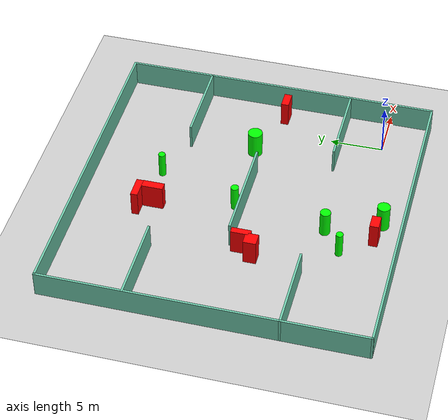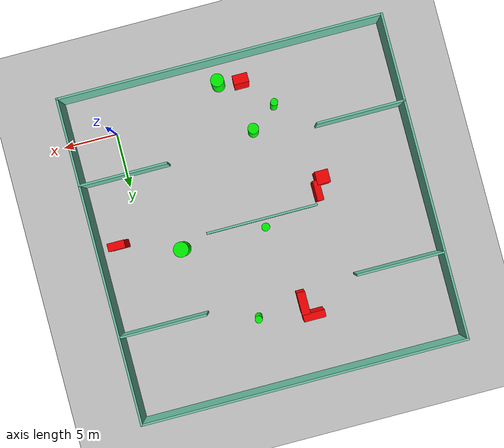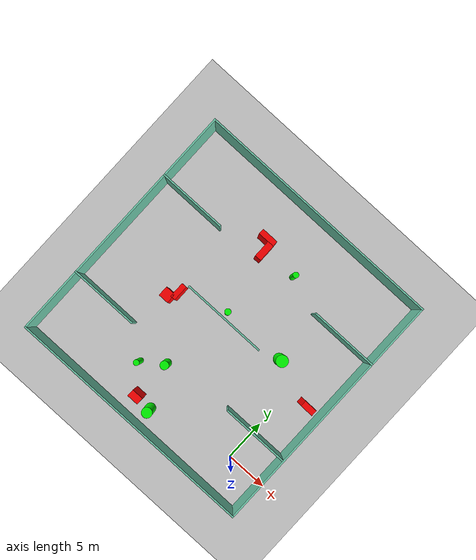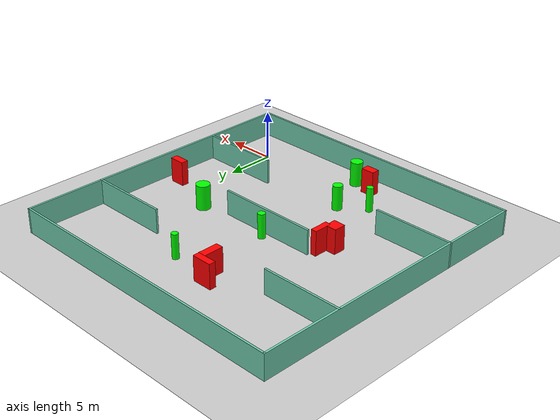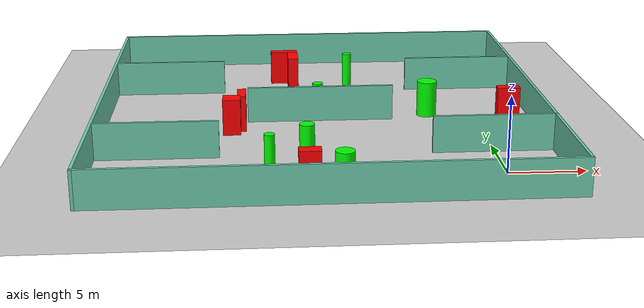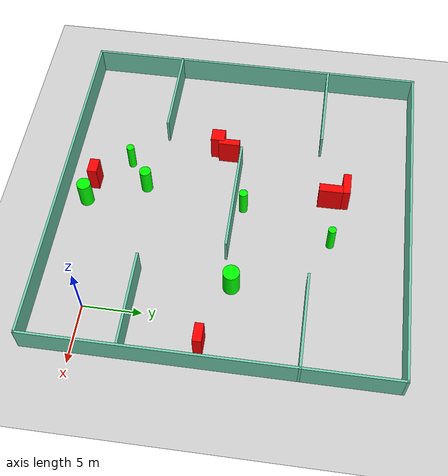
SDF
<sdf version="1.7">
 <world name="default">
  <light name="sun" type="directional">
   <pose>0 0 10 0 -0 0</pose>
   <diffuse>0.8 0.8 0.8 1</diffuse>
   <specular>0.2 0.2 0.2 1</specular>
   <attenuation>
    <range>1000</range>
    <constant>0.9</constant>
    <linear>0.01</linear>
    <quadratic>0.001</quadratic>
   </attenuation>
   <direction>-0.5 0.1 -0.9</direction>
   <spot><inner_angle>0</inner_angle><outer_angle>0</outer_angle><falloff>0</falloff></spot>
  </light>
  <model name="ground_plane">
   <static>1</static>
   <link name="link">
    <collision name="collision">
     <geometry><plane><normal>0 0 1</normal><size>100 100</size></plane></geometry>
     <surface>
      <contact><collide_bitmask>65535</collide_bitmask></contact>
      <friction><ode><mu>100</mu><mu2>50</mu2></ode></friction>
     </surface>
    </collision>
    <visual name="visual">
     <cast_shadows>0</cast_shadows>
     <geometry><plane><normal>0 0 1</normal><size>100 100</size></plane></geometry>
     <material>
      <script><uri>file://media/materials/scripts/gazebo.material</uri><name>Gazebo/Grey</name></script>
     </material>
    </visual>
   </link>
  </model>
  <gravity>0 0 -9.8</gravity>
  <magnetic_field>6e-06 2.3e-05 -4.2e-05</magnetic_field>
  <atmosphere type="adiabatic"/>
  <physics type="ode">
   <max_step_size>0.001</max_step_size>
   <real_time_factor>1</real_time_factor>
   <real_time_update_rate>1000</real_time_update_rate>
  </physics>
  <scene><ambient>0.4 0.4 0.4 1</ambient><background>0.7 0.7 0.7 1</background><shadows>1</shadows></scene>
  <spherical_coordinates>
   <surface_model>EARTH_WGS84</surface_model>
   <latitude_deg>0</latitude_deg>
   <longitude_deg>0</longitude_deg>
   <elevation>0</elevation>
   <heading_deg>0</heading_deg>
  </spherical_coordinates>
  <model name="my_base_walls">
   <link name="Wall_10">
    <collision name="Wall_10_Collision">
     <geometry><box><size>8.2 0.2 2.5</size></box></geometry>
     <pose>0 0 1.25 0 -0 0</pose>
    </collision>
    <visual name="Wall_10_Visual">
     <pose>0 0 1.25 0 -0 0</pose>
     <geometry><box><size>8.2 0.2 2.5</size></box></geometry>
     <material>
      <script><uri>file://media/materials/scripts/gazebo.material</uri><name>Gazebo/Grey</name></script>
      <ambient>0.435294 0.796078 0.67451 1</ambient>
     </material>
     <meta><layer>0</layer></meta>
    </visual>
    <pose>-11 -7 0 0 -0 0</pose>
   </link>
   <link name="Wall_12">
    <collision name="Wall_12_Collision">
     <geometry><box><size>8.2 0.2 2.5</size></box></geometry>
     <pose>0 0 1.25 0 -0 0</pose>
    </collision>
    <visual name="Wall_12_Visual">
     <pose>0 0 1.25 0 -0 0</pose>
     <geometry><box><size>8.2 0.2 2.5</size></box></geometry>
     <material>
      <script><uri>file://media/materials/scripts/gazebo.material</uri><name>Gazebo/Grey</name></script>
      <ambient>0.435294 0.796078 0.67451 1</ambient>
     </material>
     <meta><layer>0</layer></meta>
    </visual>
    <pose>-11 7 0 0 -0 0</pose>
   </link>
   <link name="Wall_14">
    <collision name="Wall_14_Collision">
     <geometry><box><size>8.2 0.2 2.5</size></box></geometry>
     <pose>0 0 1.25 0 -0 0</pose>
    </collision>
    <visual name="Wall_14_Visual">
     <pose>0 0 1.25 0 -0 0</pose>
     <geometry><box><size>8.2 0.2 2.5</size></box></geometry>
     <material>
      <script><uri>file://media/materials/scripts/gazebo.material</uri><name>Gazebo/Grey</name></script>
      <ambient>0.435294 0.796078 0.67451 1</ambient>
     </material>
     <meta><layer>0</layer></meta>
    </visual>
    <pose>11 7 0 0 -0 3.14159</pose>
   </link>
   <link name="Wall_16">
    <collision name="Wall_16_Collision">
     <geometry><box><size>10.2 0.2 2.5</size></box></geometry>
     <pose>0 0 1.25 0 -0 0</pose>
    </collision>
    <visual name="Wall_16_Visual">
     <pose>0 0 1.25 0 -0 0</pose>
     <geometry><box><size>10.2 0.2 2.5</size></box></geometry>
     <material>
      <script><uri>file://media/materials/scripts/gazebo.material</uri><name>Gazebo/Grey</name></script>
      <ambient>0.435294 0.796078 0.67451 1</ambient>
     </material>
     <meta><layer>0</layer></meta>
    </visual>
    <pose>0 0 0 0 -0 3.14159</pose>
   </link>
   <link name="Wall_2">
    <collision name="Wall_2_Collision">
     <geometry><box><size>30.2 0.2 2.5</size></box></geometry>
     <pose>0 0 1.25 0 -0 0</pose>
    </collision>
    <visual name="Wall_2_Visual">
     <pose>0 0 1.25 0 -0 0</pose>
     <geometry><box><size>30.2 0.2 2.5</size></box></geometry>
     <material>
      <script><uri>file://media/materials/scripts/gazebo.material</uri><name>Gazebo/Grey</name></script>
      <ambient>0.435294 0.796078 0.67451 1</ambient>
     </material>
     <meta><layer>0</layer></meta>
    </visual>
    <pose>0 -15 0 0 -0 3.14159</pose>
   </link>
   <link name="Wall_3">
    <collision name="Wall_3_Collision">
     <geometry><box><size>30.2 0.2 2.5</size></box></geometry>
     <pose>0 0 1.25 0 -0 0</pose>
    </collision>
    <visual name="Wall_3_Visual">
     <pose>0 0 1.25 0 -0 0</pose>
     <geometry><box><size>30.2 0.2 2.5</size></box></geometry>
     <material>
      <script><uri>file://media/materials/scripts/gazebo.material</uri><name>Gazebo/Grey</name></script>
      <ambient>0.435294 0.796078 0.67451 1</ambient>
     </material>
     <meta><layer>0</layer></meta>
    </visual>
    <pose>-15 0 0 0 -0 1.5708</pose>
   </link>
   <link name="Wall_4">
    <collision name="Wall_4_Collision">
     <geometry><box><size>30.2 0.2 2.5</size></box></geometry>
     <pose>0 0 1.25 0 -0 0</pose>
    </collision>
    <visual name="Wall_4_Visual">
     <pose>0 0 1.25 0 -0 0</pose>
     <geometry><box><size>30.2 0.2 2.5</size></box></geometry>
     <material>
      <script><uri>file://media/materials/scripts/gazebo.material</uri><name>Gazebo/Grey</name></script>
      <ambient>0.435294 0.796078 0.67451 1</ambient>
     </material>
     <meta><layer>0</layer></meta>
    </visual>
    <pose>0 15 0 0 -0 0</pose>
   </link>
   <link name="Wall_6">
    <collision name="Wall_6_Collision">
     <geometry><box><size>30.2 0.2 2.5</size></box></geometry>
     <pose>0 0 1.25 0 -0 0</pose>
    </collision>
    <visual name="Wall_6_Visual">
     <pose>0 0 1.25 0 -0 0</pose>
     <geometry><box><size>30.2 0.2 2.5</size></box></geometry>
     <material>
      <script><uri>file://media/materials/scripts/gazebo.material</uri><name>Gazebo/Grey</name></script>
      <ambient>0.435294 0.796078 0.67451 1</ambient>
     </material>
     <meta><layer>0</layer></meta>
    </visual>
    <pose>15 0 0 0 -0 1.5708</pose>
   </link>
   <link name="Wall_8">
    <collision name="Wall_8_Collision">
     <geometry><box><size>8.2 0.2 2.5</size></box></geometry>
     <pose>0 0 1.25 0 -0 0</pose>
    </collision>
    <visual name="Wall_8_Visual">
     <pose>0 0 1.25 0 -0 0</pose>
     <geometry><box><size>8.2 0.2 2.5</size></box></geometry>
     <material>
      <script><uri>file://media/materials/scripts/gazebo.material</uri><name>Gazebo/Grey</name></script>
      <ambient>0.435294 0.796078 0.67451 1</ambient>
     </material>
     <meta><layer>0</layer></meta>
    </visual>
    <pose>11 -7 0 0 -0 3.14159</pose>
   </link>
   <static>1</static>
   <pose>-11 11 0 0 -0 0</pose>
  </model>
  <model name="cylinder1">
   <static>1</static>
   <link name="link">
    <inertial>
     <mass>1</mass>
     <inertia><ixx>0.5</ixx><ixy>0</ixy><ixz>0</ixz><iyy>0.5</iyy><iyz>0</iyz><izz>1</izz></inertia>
    </inertial>
    <collision name="collision">
     <geometry><cylinder><radius>0.3327525448887421</radius><length>2.5</length></cylinder></geometry>
    </collision>
    <visual name="visual">
     <geometry><cylinder><radius>0.3327525448887421</radius><length>2.5</length></cylinder></geometry>
     <material>
      <ambient>0 1 0 1</ambient>
      <diffuse>0 1 0 1</diffuse>
      <specular>0.1 0.1 0.1 1</specular>
      <emissive>0 0 0 0</emissive>
     </material>
    </visual>
   </link>
   <pose>-8.446613565926564 19.579807770333495 1.25 0 0 0</pose>
  </model>
  <model name="cylinder2">
   <static>1</static>
   <link name="link">
    <inertial>
     <mass>1</mass>
     <inertia><ixx>0.5</ixx><ixy>0</ixy><ixz>0</ixz><iyy>0.5</iyy><iyz>0</iyz><izz>1</izz></inertia>
    </inertial>
    <collision name="collision">
     <geometry><cylinder><radius>0.49361861333247964</radius><length>2.5</length></cylinder></geometry>
    </collision>
    <visual name="visual">
     <geometry><cylinder><radius>0.49361861333247964</radius><length>2.5</length></cylinder></geometry>
     <material>
      <ambient>0 1 0 1</ambient>
      <diffuse>0 1 0 1</diffuse>
      <specular>0.1 0.1 0.1 1</specular>
      <emissive>0 0 0 0</emissive>
     </material>
    </visual>
   </link>
   <pose>-12.29751967082928 3.008050075933065 1.25 0 0 0</pose>
  </model>
  <model name="cylinder3">
   <static>1</static>
   <link name="link">
    <inertial>
     <mass>1</mass>
     <inertia><ixx>0.5</ixx><ixy>0</ixy><ixz>0</ixz><iyy>0.5</iyy><iyz>0</iyz><izz>1</izz></inertia>
    </inertial>
    <collision name="collision">
     <geometry><cylinder><radius>0.372849064959431</radius><length>2.5</length></cylinder></geometry>
    </collision>
    <visual name="visual">
     <geometry><cylinder><radius>0.372849064959431</radius><length>2.5</length></cylinder></geometry>
     <material>
      <ambient>0 1 0 1</ambient>
      <diffuse>0 1 0 1</diffuse>
      <specular>0.1 0.1 0.1 1</specular>
      <emissive>0 0 0 0</emissive>
     </material>
    </visual>
   </link>
   <pose>-11.14096101381585 11.789226195258498 1.25 0 0 0</pose>
  </model>
  <model name="cylinder4">
   <static>1</static>
   <link name="link">
    <inertial>
     <mass>1</mass>
     <inertia><ixx>0.5</ixx><ixy>0</ixy><ixz>0</ixz><iyy>0.5</iyy><iyz>0</iyz><izz>1</izz></inertia>
    </inertial>
    <collision name="collision">
     <geometry><cylinder><radius>0.6027343178686553</radius><length>2.5</length></cylinder></geometry>
    </collision>
    <visual name="visual">
     <geometry><cylinder><radius>0.6027343178686553</radius><length>2.5</length></cylinder></geometry>
     <material>
      <ambient>0 1 0 1</ambient>
      <diffuse>0 1 0 1</diffuse>
      <specular>0.1 0.1 0.1 1</specular>
      <emissive>0 0 0 0</emissive>
     </material>
    </visual>
   </link>
   <pose>-10.272597975442102 -1.9890923113085348 1.25 0 0 0</pose>
  </model>
  <model name="cylinder5">
   <static>1</static>
   <link name="link">
    <inertial>
     <mass>1</mass>
     <inertia><ixx>0.5</ixx><ixy>0</ixy><ixz>0</ixz><iyy>0.5</iyy><iyz>0</iyz><izz>1</izz></inertia>
    </inertial>
    <collision name="collision">
     <geometry><cylinder><radius>0.3360084820995835</radius><length>2.5</length></cylinder></geometry>
    </collision>
    <visual name="visual">
     <geometry><cylinder><radius>0.3360084820995835</radius><length>2.5</length></cylinder></geometry>
     <material>
      <ambient>0 1 0 1</ambient>
      <diffuse>0 1 0 1</diffuse>
      <specular>0.1 0.1 0.1 1</specular>
      <emissive>0 0 0 0</emissive>
     </material>
    </visual>
   </link>
   <pose>-14.705540579536638 1.1970976333511256 1.25 0 0 0</pose>
  </model>
  <model name="cylinder6">
   <static>1</static>
   <link name="link">
    <inertial>
     <mass>1</mass>
     <inertia><ixx>0.5</ixx><ixy>0</ixy><ixz>0</ixz><iyy>0.5</iyy><iyz>0</iyz><izz>1</izz></inertia>
    </inertial>
    <collision name="collision">
     <geometry><cylinder><radius>0.6946485230807693</radius><length>2.5</length></cylinder></geometry>
    </collision>
    <visual name="visual">
     <geometry><cylinder><radius>0.6946485230807693</radius><length>2.5</length></cylinder></geometry>
     <material>
      <ambient>0 1 0 1</ambient>
      <diffuse>0 1 0 1</diffuse>
      <specular>0.1 0.1 0.1 1</specular>
      <emissive>0 0 0 0</emissive>
     </material>
    </visual>
   </link>
   <pose>-3.3271197048651544 11.805229045004427 1.25 0 0 0</pose>
  </model>
  <model name="box1">
   <static>1</static>
   <link name="link">
    <inertial>
     <mass>1</mass>
     <inertia><ixx>0.083</ixx><ixy>0</ixy><ixz>0</ixz><iyy>0.083</iyy><iyz>0</iyz><izz>0.083</izz></inertia>
    </inertial>
    <collision name="collision">
     <geometry><box><size>0.6008143345830437 1.850576794162951 2.5</size></box></geometry>
    </collision>
    <visual name="visual">
     <geometry><box><size>0.6008143345830437 1.850576794162951 2.5</size></box></geometry>
     <material>
      <ambient>1 0 0 1</ambient>
      <diffuse>1 0 0 1</diffuse>
      <specular>0.1 0.1 0.1 1</specular>
      <emissive>0 0 0 0</emissive>
     </material>
    </visual>
    <sensor name="my_contact" type="contact">
     <contact><collision>box_collision</collision><topic>__default_topic__</topic></contact>
    </sensor>
   </link>
   <pose>-16.497477897221852 9.825389448249547 1.25 0 0 0</pose>
  </model>
  <model name="box2">
   <static>1</static>
   <link name="link">
    <inertial>
     <mass>1</mass>
     <inertia><ixx>0.083</ixx><ixy>0</ixy><ixz>0</ixz><iyy>0.083</iyy><iyz>0</iyz><izz>0.083</izz></inertia>
    </inertial>
    <collision name="collision">
     <geometry><box><size>0.7688996171063691 2.046428331196712 2.5</size></box></geometry>
    </collision>
    <visual name="visual">
     <geometry><box><size>0.7688996171063691 2.046428331196712 2.5</size></box></geometry>
     <material>
      <ambient>1 0 0 1</ambient>
      <diffuse>1 0 0 1</diffuse>
      <specular>0.1 0.1 0.1 1</specular>
      <emissive>0 0 0 0</emissive>
     </material>
    </visual>
    <sensor name="my_contact" type="contact">
     <contact><collision>box_collision</collision><topic>__default_topic__</topic></contact>
    </sensor>
   </link>
   <pose>-12.658296594894967 19.209996010996537 1.25 0 0 0</pose>
  </model>
  <model name="box3">
   <static>1</static>
   <link name="link">
    <inertial>
     <mass>1</mass>
     <inertia><ixx>0.083</ixx><ixy>0</ixy><ixz>0</ixz><iyy>0.083</iyy><iyz>0</iyz><izz>0.083</izz></inertia>
    </inertial>
    <collision name="collision">
     <geometry><box><size>1.3786520716200088 0.847393932084159 2.5</size></box></geometry>
    </collision>
    <visual name="visual">
     <geometry><box><size>1.3786520716200088 0.847393932084159 2.5</size></box></geometry>
     <material>
      <ambient>1 0 0 1</ambient>
      <diffuse>1 0 0 1</diffuse>
      <specular>0.1 0.1 0.1 1</specular>
      <emissive>0 0 0 0</emissive>
     </material>
    </visual>
    <sensor name="my_contact" type="contact">
     <contact><collision>box_collision</collision><topic>__default_topic__</topic></contact>
    </sensor>
   </link>
   <pose>-12.32271406209578 -1.5978689906067158 1.25 0 0 0</pose>
  </model>
  <model name="box4">
   <static>1</static>
   <link name="link">
    <inertial>
     <mass>1</mass>
     <inertia><ixx>0.083</ixx><ixy>0</ixy><ixz>0</ixz><iyy>0.083</iyy><iyz>0</iyz><izz>0.083</izz></inertia>
    </inertial>
    <collision name="collision">
     <geometry><box><size>1.5670395510876491 0.7274203423086114 2.5</size></box></geometry>
    </collision>
    <visual name="visual">
     <geometry><box><size>1.5670395510876491 0.7274203423086114 2.5</size></box></geometry>
     <material>
      <ambient>1 0 0 1</ambient>
      <diffuse>1 0 0 1</diffuse>
      <specular>0.1 0.1 0.1 1</specular>
      <emissive>0 0 0 0</emissive>
     </material>
    </visual>
    <sensor name="my_contact" type="contact">
     <contact><collision>box_collision</collision><topic>__default_topic__</topic></contact>
    </sensor>
   </link>
   <pose>2.1631998919579196 10.006305196514134 1.25 0 0 0</pose>
  </model>
  <model name="box5">
   <static>1</static>
   <link name="link">
    <inertial>
     <mass>1</mass>
     <inertia><ixx>0.083</ixx><ixy>0</ixy><ixz>0</ixz><iyy>0.083</iyy><iyz>0</iyz><izz>0.083</izz></inertia>
    </inertial>
    <collision name="collision">
     <geometry><box><size>2.0135239972361623 0.6611533973475655 2.5</size></box></geometry>
    </collision>
    <visual name="visual">
     <geometry><box><size>2.0135239972361623 0.6611533973475655 2.5</size></box></geometry>
     <material>
      <ambient>1 0 0 1</ambient>
      <diffuse>1 0 0 1</diffuse>
      <specular>0.1 0.1 0.1 1</specular>
      <emissive>0 0 0 0</emissive>
     </material>
    </visual>
    <sensor name="my_contact" type="contact">
     <contact><collision>box_collision</collision><topic>__default_topic__</topic></contact>
    </sensor>
   </link>
   <pose>-13.316051459828262 20.52617140213876 1.25 0 0 0</pose>
  </model>
  <model name="box6">
   <static>1</static>
   <link name="link">
    <inertial>
     <mass>1</mass>
     <inertia><ixx>0.083</ixx><ixy>0</ixy><ixz>0</ixz><iyy>0.083</iyy><iyz>0</iyz><izz>0.083</izz></inertia>
    </inertial>
    <collision name="collision">
     <geometry><box><size>1.2096583075677882 1.2063745758191553 2.5</size></box></geometry>
    </collision>
    <visual name="visual">
     <geometry><box><size>1.2096583075677882 1.2063745758191553 2.5</size></box></geometry>
     <material>
      <ambient>1 0 0 1</ambient>
      <diffuse>1 0 0 1</diffuse>
      <specular>0.1 0.1 0.1 1</specular>
      <emissive>0 0 0 0</emissive>
     </material>
    </visual>
    <sensor name="my_contact" type="contact">
     <contact><collision>box_collision</collision><topic>__default_topic__</topic></contact>
    </sensor>
   </link>
   <pose>-17.175718175149072 8.754795242884104 1.25 0 0 0</pose>
  </model>
 </world>
</sdf>
